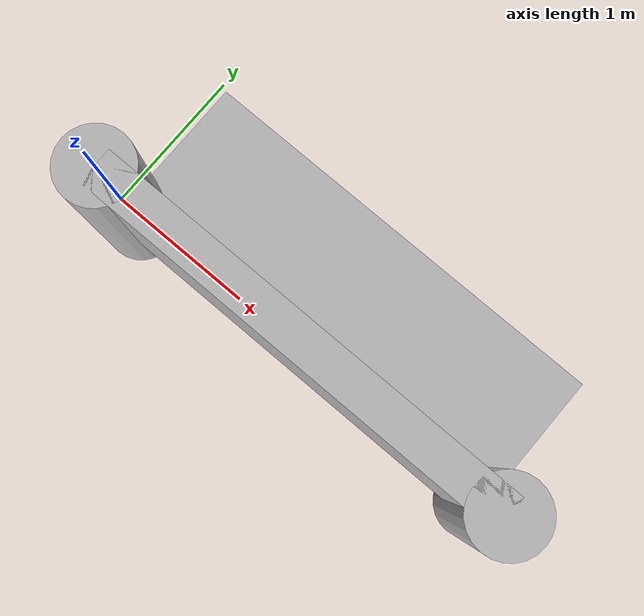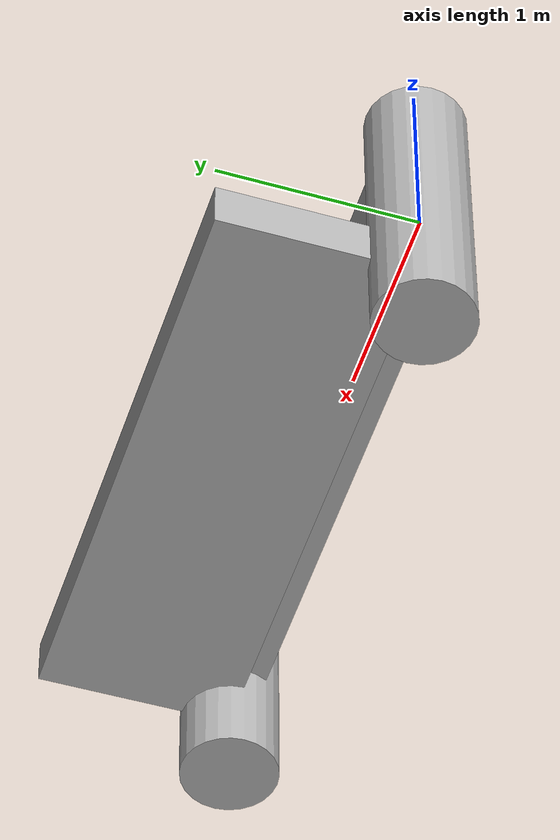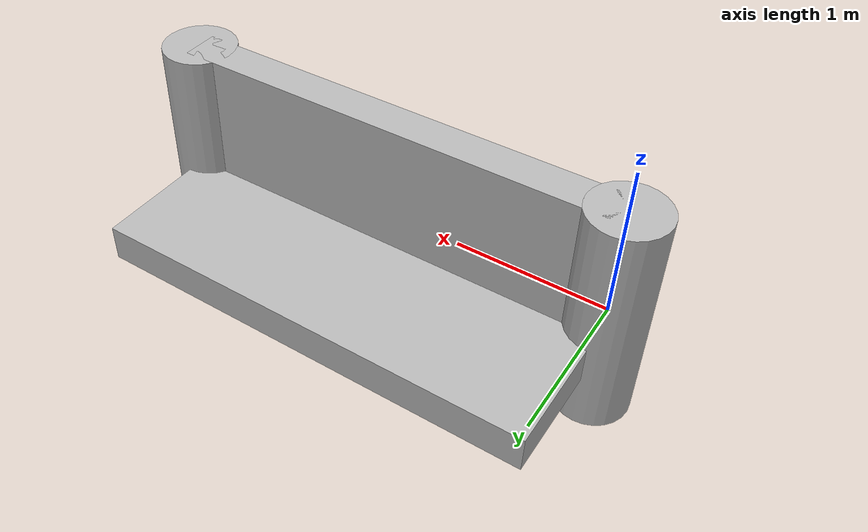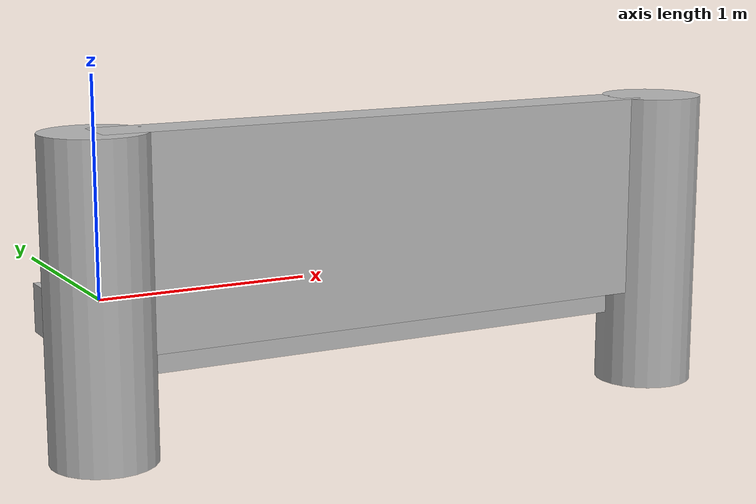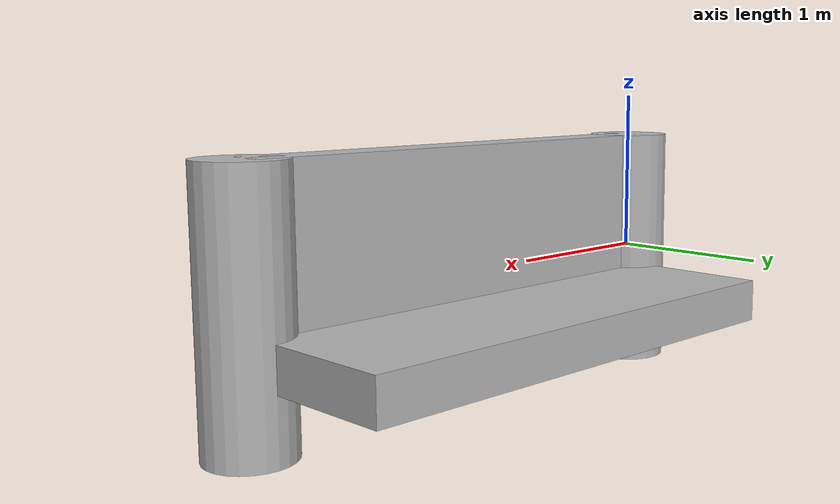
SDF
<?xml version='1.0'?>
<sdf version="1.4">
  <model name="proj_model">
    <pose>0 0 0 0 0 0</pose>
    <static>false</static>
    <link name="link">
      <inertial>
        <mass>1.0</mass>
        <inertia>
          <ixx>0.083</ixx>
          <ixy>0.0</ixy>
          <ixz>0.0</ixz>
          <iyy>0.083</iyy>
          <iyz>0.0</iyz>
          <izz>0.083</izz>
        </inertia>
      </inertial>
      <collision name="collision1">
        <geometry>
          <cylinder>
            <radius>0.25</radius>
            <length>1.5</length>
          </cylinder>
        </geometry>
      </collision>
      <collision name="collision2">
        <pose>1.5 0 0.25 0 0 0</pose>
        <geometry>
            <box>
                <size>3 0.25 1</size>
            </box>
        </geometry>
      </collision>
      <collision name="collision3">
        <pose>3 0 0 0 0 0</pose>
        <geometry>
          <cylinder>
            <radius>0.25</radius>
            <length>1.5</length>
          </cylinder>
        </geometry>
      </collision>
      <collision name="collision4">
        <pose>1.5 0.5 -0.25 0 0 0</pose>
        <geometry>
            <box>
                <size>3 1 0.25</size>
            </box>
        </geometry>
      </collision>
      <visual name="visual1">
        <geometry>
          <cylinder>
            <radius>0.25</radius>
            <length>1.5</length>
          </cylinder>
        </geometry>
      </visual>
      <visual name="visual2">
        <pose>1.5 0 0.25 0 0 0</pose>
        <geometry>
            <box>
                <size>3 0.25 1</size>
            </box>
        </geometry>
      </visual>
      <visual name="visual3">
        <pose>3 0 0 0 0 0</pose>
        <geometry>
            <cylinder>
                <radius>0.25</radius>
                <length>1.5</length>
            </cylinder>
        </geometry>
      </visual>
      <visual name="visual4">
        <pose>1.5 0.5 -0.25 0 0 0</pose>
        <geometry>
            <box>
                <size>3 1 0.25</size>
            </box>
        </geometry>
      </visual>
    </link>
  </model>
</sdf>
